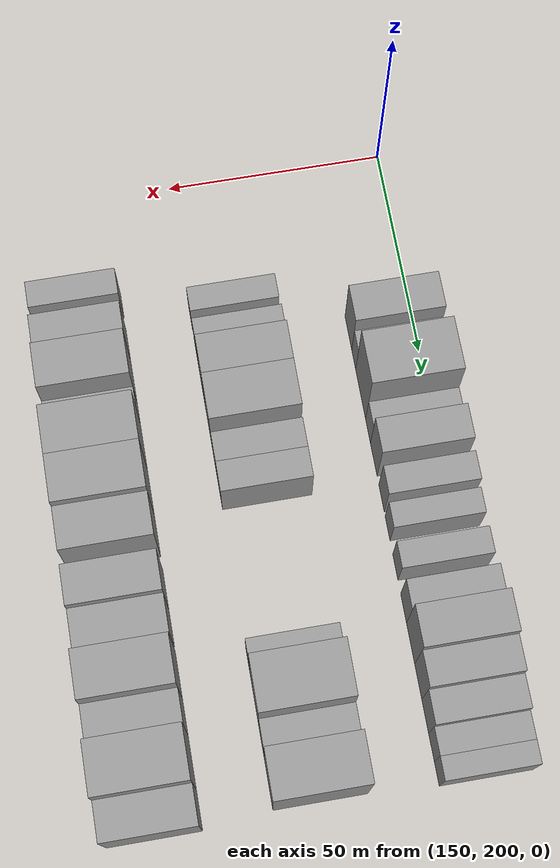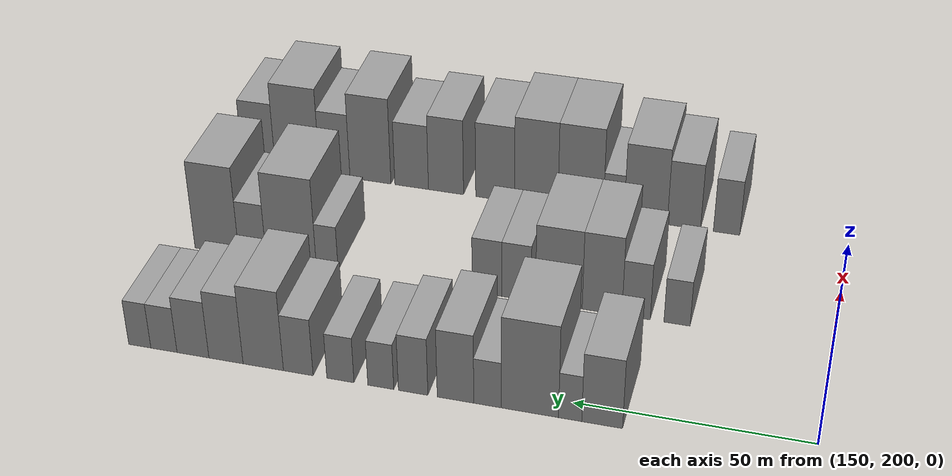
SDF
<sdf version="1.6">
 <world name="default">
  <model name="building_458">
   <static>1</static>
   <pose>155.0000 242.9606 0 0.000000 0.000000 0.000000</pose>
   <link name="link">
    <pose>0 0 9.00 0 0 0</pose>
    <collision name="collision"><geometry><box><size>20.0000 8.3943 18.0000</size></box></geometry></collision>
    <visual name="visual">
     <cast_shadows>0</cast_shadows>
     <geometry><box><size>20.0000 8.3943 18.0000</size></box></geometry>
     <material>
      <script>
       <uri>model://grey_wall/materials/scripts</uri>
       <uri>model://grey_wall/materials/textures</uri>
       <name>vrc/grey_wall</name>
      </script>
     </material>
    </visual>
   </link>
  </model>
  <model name="building_459">
   <static>1</static>
   <pose>155.0000 249.5626 0 0.000000 0.000000 0.000000</pose>
   <link name="link">
    <pose>0 0 6.00 0 0 0</pose>
    <collision name="collision"><geometry><box><size>20.0000 4.8097 12.0000</size></box></geometry></collision>
    <visual name="visual">
     <cast_shadows>0</cast_shadows>
     <geometry><box><size>20.0000 4.8097 12.0000</size></box></geometry>
     <material>
      <script>
       <uri>model://grey_wall/materials/scripts</uri>
       <uri>model://grey_wall/materials/textures</uri>
       <name>vrc/grey_wall</name>
      </script>
     </material>
    </visual>
   </link>
  </model>
  <model name="building_460">
   <static>1</static>
   <pose>155.0000 257.9498 0 0.000000 0.000000 0.000000</pose>
   <link name="link">
    <pose>0 0 12.00 0 0 0</pose>
    <collision name="collision"><geometry><box><size>20.0000 11.9647 24.0000</size></box></geometry></collision>
    <visual name="visual">
     <cast_shadows>0</cast_shadows>
     <geometry><box><size>20.0000 11.9647 24.0000</size></box></geometry>
     <material>
      <script>
       <uri>model://grey_wall/materials/scripts</uri>
       <uri>model://grey_wall/materials/textures</uri>
       <name>vrc/grey_wall</name>
      </script>
     </material>
    </visual>
   </link>
  </model>
  <model name="building_461">
   <static>1</static>
   <pose>155.0000 266.8245 0 0.000000 0.000000 0.000000</pose>
   <link name="link">
    <pose>0 0 6.00 0 0 0</pose>
    <collision name="collision"><geometry><box><size>20.0000 5.7848 12.0000</size></box></geometry></collision>
    <visual name="visual">
     <cast_shadows>0</cast_shadows>
     <geometry><box><size>20.0000 5.7848 12.0000</size></box></geometry>
     <material>
      <script>
       <uri>model://grey_wall/materials/scripts</uri>
       <uri>model://grey_wall/materials/textures</uri>
       <name>vrc/grey_wall</name>
      </script>
     </material>
    </visual>
   </link>
  </model>
  <model name="building_462">
   <static>1</static>
   <pose>155.0000 273.6049 0 0.000000 0.000000 0.000000</pose>
   <link name="link">
    <pose>0 0 9.00 0 0 0</pose>
    <collision name="collision"><geometry><box><size>20.0000 7.7759 18.0000</size></box></geometry></collision>
    <visual name="visual">
     <cast_shadows>0</cast_shadows>
     <geometry><box><size>20.0000 7.7759 18.0000</size></box></geometry>
     <material>
      <script>
       <uri>model://grey_wall/materials/scripts</uri>
       <uri>model://grey_wall/materials/textures</uri>
       <name>vrc/grey_wall</name>
      </script>
     </material>
    </visual>
   </link>
  </model>
  <model name="building_463">
   <static>1</static>
   <pose>155.0000 282.6535 0 0.000000 0.000000 0.000000</pose>
   <link name="link">
    <pose>0 0 7.50 0 0 0</pose>
    <collision name="collision"><geometry><box><size>20.0000 6.3214 15.0000</size></box></geometry></collision>
    <visual name="visual">
     <cast_shadows>0</cast_shadows>
     <geometry><box><size>20.0000 6.3214 15.0000</size></box></geometry>
     <material>
      <script>
       <uri>model://grey_wall/materials/scripts</uri>
       <uri>model://grey_wall/materials/textures</uri>
       <name>vrc/grey_wall</name>
      </script>
     </material>
    </visual>
   </link>
  </model>
  <model name="building_464">
   <static>1</static>
   <pose>155.0000 289.6211 0 0.000000 0.000000 0.000000</pose>
   <link name="link">
    <pose>0 0 6.00 0 0 0</pose>
    <collision name="collision"><geometry><box><size>20.0000 5.6137 12.0000</size></box></geometry></collision>
    <visual name="visual">
     <cast_shadows>0</cast_shadows>
     <geometry><box><size>20.0000 5.6137 12.0000</size></box></geometry>
     <material>
      <script>
       <uri>model://grey_wall/materials/scripts</uri>
       <uri>model://grey_wall/materials/textures</uri>
       <name>vrc/grey_wall</name>
      </script>
     </material>
    </visual>
   </link>
  </model>
  <model name="building_465">
   <static>1</static>
   <pose>155.0000 298.3934 0 0.000000 0.000000 0.000000</pose>
   <link name="link">
    <pose>0 0 6.00 0 0 0</pose>
    <collision name="collision"><geometry><box><size>20.0000 5.9309 12.0000</size></box></geometry></collision>
    <visual name="visual">
     <cast_shadows>0</cast_shadows>
     <geometry><box><size>20.0000 5.9309 12.0000</size></box></geometry>
     <material>
      <script>
       <uri>model://grey_wall/materials/scripts</uri>
       <uri>model://grey_wall/materials/textures</uri>
       <name>vrc/grey_wall</name>
      </script>
     </material>
    </visual>
   </link>
  </model>
  <model name="building_466">
   <static>1</static>
   <pose>155.0000 307.6278 0 0.000000 0.000000 0.000000</pose>
   <link name="link">
    <pose>0 0 7.50 0 0 0</pose>
    <collision name="collision"><geometry><box><size>20.0000 6.5379 15.0000</size></box></geometry></collision>
    <visual name="visual">
     <cast_shadows>0</cast_shadows>
     <geometry><box><size>20.0000 6.5379 15.0000</size></box></geometry>
     <material>
      <script>
       <uri>model://grey_wall/materials/scripts</uri>
       <uri>model://grey_wall/materials/textures</uri>
       <name>vrc/grey_wall</name>
      </script>
     </material>
    </visual>
   </link>
  </model>
  <model name="building_467">
   <static>1</static>
   <pose>155.0000 315.3817 0 0.000000 0.000000 0.000000</pose>
   <link name="link">
    <pose>0 0 10.50 0 0 0</pose>
    <collision name="collision"><geometry><box><size>20.0000 8.9701 21.0000</size></box></geometry></collision>
    <visual name="visual">
     <cast_shadows>0</cast_shadows>
     <geometry><box><size>20.0000 8.9701 21.0000</size></box></geometry>
     <material>
      <script>
       <uri>model://grey_wall/materials/scripts</uri>
       <uri>model://grey_wall/materials/textures</uri>
       <name>vrc/grey_wall</name>
      </script>
     </material>
    </visual>
   </link>
  </model>
  <model name="building_468">
   <static>1</static>
   <pose>155.0000 323.6958 0 0.000000 0.000000 0.000000</pose>
   <link name="link">
    <pose>0 0 9.00 0 0 0</pose>
    <collision name="collision"><geometry><box><size>20.0000 7.6580 18.0000</size></box></geometry></collision>
    <visual name="visual">
     <cast_shadows>0</cast_shadows>
     <geometry><box><size>20.0000 7.6580 18.0000</size></box></geometry>
     <material>
      <script>
       <uri>model://grey_wall/materials/scripts</uri>
       <uri>model://grey_wall/materials/textures</uri>
       <name>vrc/grey_wall</name>
      </script>
     </material>
    </visual>
   </link>
  </model>
  <model name="building_469">
   <static>1</static>
   <pose>155.0000 331.1213 0 0.000000 0.000000 0.000000</pose>
   <link name="link">
    <pose>0 0 7.50 0 0 0</pose>
    <collision name="collision"><geometry><box><size>20.0000 7.1929 15.0000</size></box></geometry></collision>
    <visual name="visual">
     <cast_shadows>0</cast_shadows>
     <geometry><box><size>20.0000 7.1929 15.0000</size></box></geometry>
     <material>
      <script>
       <uri>model://grey_wall/materials/scripts</uri>
       <uri>model://grey_wall/materials/textures</uri>
       <name>vrc/grey_wall</name>
      </script>
     </material>
    </visual>
   </link>
  </model>
  <model name="building_470">
   <static>1</static>
   <pose>155.0000 337.6980 0 0.000000 0.000000 0.000000</pose>
   <link name="link">
    <pose>0 0 6.00 0 0 0</pose>
    <collision name="collision"><geometry><box><size>20.0000 5.9605 12.0000</size></box></geometry></collision>
    <visual name="visual">
     <cast_shadows>0</cast_shadows>
     <geometry><box><size>20.0000 5.9605 12.0000</size></box></geometry>
     <material>
      <script>
       <uri>model://grey_wall/materials/scripts</uri>
       <uri>model://grey_wall/materials/textures</uri>
       <name>vrc/grey_wall</name>
      </script>
     </material>
    </visual>
   </link>
  </model>
  <model name="building_471">
   <static>1</static>
   <pose>155.0000 343.2026 0 0.000000 0.000000 0.000000</pose>
   <link name="link">
    <pose>0 0 6.00 0 0 0</pose>
    <collision name="collision"><geometry><box><size>20.0000 5.0488 12.0000</size></box></geometry></collision>
    <visual name="visual">
     <cast_shadows>0</cast_shadows>
     <geometry><box><size>20.0000 5.0488 12.0000</size></box></geometry>
     <material>
      <script>
       <uri>model://grey_wall/materials/scripts</uri>
       <uri>model://grey_wall/materials/textures</uri>
       <name>vrc/grey_wall</name>
      </script>
     </material>
    </visual>
   </link>
  </model>
  <model name="building_584">
   <static>1</static>
   <pose>190.0000 233.4804 0 0.000000 0.000000 0.000000</pose>
   <link name="link">
    <pose>0 0 6.00 0 0 0</pose>
    <collision name="collision"><geometry><box><size>20.0000 5.7271 12.0000</size></box></geometry></collision>
    <visual name="visual">
     <cast_shadows>0</cast_shadows>
     <geometry><box><size>20.0000 5.7271 12.0000</size></box></geometry>
     <material>
      <script>
       <uri>model://grey_wall/materials/scripts</uri>
       <uri>model://grey_wall/materials/textures</uri>
       <name>vrc/grey_wall</name>
      </script>
     </material>
    </visual>
   </link>
  </model>
  <model name="building_585">
   <static>1</static>
   <pose>190.0000 242.4651 0 0.000000 0.000000 0.000000</pose>
   <link name="link">
    <pose>0 0 7.50 0 0 0</pose>
    <collision name="collision"><geometry><box><size>20.0000 6.2423 15.0000</size></box></geometry></collision>
    <visual name="visual">
     <cast_shadows>0</cast_shadows>
     <geometry><box><size>20.0000 6.2423 15.0000</size></box></geometry>
     <material>
      <script>
       <uri>model://grey_wall/materials/scripts</uri>
       <uri>model://grey_wall/materials/textures</uri>
       <name>vrc/grey_wall</name>
      </script>
     </material>
    </visual>
   </link>
  </model>
  <model name="building_586">
   <static>1</static>
   <pose>190.0000 250.0035 0 0.000000 0.000000 0.000000</pose>
   <link name="link">
    <pose>0 0 10.50 0 0 0</pose>
    <collision name="collision"><geometry><box><size>20.0000 8.8345 21.0000</size></box></geometry></collision>
    <visual name="visual">
     <cast_shadows>0</cast_shadows>
     <geometry><box><size>20.0000 8.8345 21.0000</size></box></geometry>
     <material>
      <script>
       <uri>model://grey_wall/materials/scripts</uri>
       <uri>model://grey_wall/materials/textures</uri>
       <name>vrc/grey_wall</name>
      </script>
     </material>
    </visual>
   </link>
  </model>
  <model name="building_587">
   <static>1</static>
   <pose>190.0000 259.6524 0 0.000000 0.000000 0.000000</pose>
   <link name="link">
    <pose>0 0 10.50 0 0 0</pose>
    <collision name="collision"><geometry><box><size>20.0000 10.4633 21.0000</size></box></geometry></collision>
    <visual name="visual">
     <cast_shadows>0</cast_shadows>
     <geometry><box><size>20.0000 10.4633 21.0000</size></box></geometry>
     <material>
      <script>
       <uri>model://grey_wall/materials/scripts</uri>
       <uri>model://grey_wall/materials/textures</uri>
       <name>vrc/grey_wall</name>
      </script>
     </material>
    </visual>
   </link>
  </model>
  <model name="building_588">
   <static>1</static>
   <pose>190.0000 269.1987 0 0.000000 0.000000 0.000000</pose>
   <link name="link">
    <pose>0 0 7.50 0 0 0</pose>
    <collision name="collision"><geometry><box><size>20.0000 6.6293 15.0000</size></box></geometry></collision>
    <visual name="visual">
     <cast_shadows>0</cast_shadows>
     <geometry><box><size>20.0000 6.6293 15.0000</size></box></geometry>
     <material>
      <script>
       <uri>model://grey_wall/materials/scripts</uri>
       <uri>model://grey_wall/materials/textures</uri>
       <name>vrc/grey_wall</name>
      </script>
     </material>
    </visual>
   </link>
  </model>
  <model name="building_589">
   <static>1</static>
   <pose>190.0000 275.8765 0 0.000000 0.000000 0.000000</pose>
   <link name="link">
    <pose>0 0 7.50 0 0 0</pose>
    <collision name="collision"><geometry><box><size>20.0000 6.7262 15.0000</size></box></geometry></collision>
    <visual name="visual">
     <cast_shadows>0</cast_shadows>
     <geometry><box><size>20.0000 6.7262 15.0000</size></box></geometry>
     <material>
      <script>
       <uri>model://grey_wall/materials/scripts</uri>
       <uri>model://grey_wall/materials/textures</uri>
       <name>vrc/grey_wall</name>
      </script>
     </material>
    </visual>
   </link>
  </model>
  <model name="building_590">
   <static>1</static>
   <pose>190.0000 312.9645 0 0.000000 0.000000 0.000000</pose>
   <link name="link">
    <pose>0 0 6.00 0 0 0</pose>
    <collision name="collision"><geometry><box><size>20.0000 5.1500 12.0000</size></box></geometry></collision>
    <visual name="visual">
     <cast_shadows>0</cast_shadows>
     <geometry><box><size>20.0000 5.1500 12.0000</size></box></geometry>
     <material>
      <script>
       <uri>model://grey_wall/materials/scripts</uri>
       <uri>model://grey_wall/materials/textures</uri>
       <name>vrc/grey_wall</name>
      </script>
     </material>
    </visual>
   </link>
  </model>
  <model name="building_591">
   <static>1</static>
   <pose>190.0000 321.5065 0 0.000000 0.000000 0.000000</pose>
   <link name="link">
    <pose>0 0 12.00 0 0 0</pose>
    <collision name="collision"><geometry><box><size>20.0000 11.9340 24.0000</size></box></geometry></collision>
    <visual name="visual">
     <cast_shadows>0</cast_shadows>
     <geometry><box><size>20.0000 11.9340 24.0000</size></box></geometry>
     <material>
      <script>
       <uri>model://grey_wall/materials/scripts</uri>
       <uri>model://grey_wall/materials/textures</uri>
       <name>vrc/grey_wall</name>
      </script>
     </material>
    </visual>
   </link>
  </model>
  <model name="building_592">
   <static>1</static>
   <pose>190.0000 330.7535 0 0.000000 0.000000 0.000000</pose>
   <link name="link">
    <pose>0 0 7.50 0 0 0</pose>
    <collision name="collision"><geometry><box><size>20.0000 6.5600 15.0000</size></box></geometry></collision>
    <visual name="visual">
     <cast_shadows>0</cast_shadows>
     <geometry><box><size>20.0000 6.5600 15.0000</size></box></geometry>
     <material>
      <script>
       <uri>model://grey_wall/materials/scripts</uri>
       <uri>model://grey_wall/materials/textures</uri>
       <name>vrc/grey_wall</name>
      </script>
     </material>
    </visual>
   </link>
  </model>
  <model name="building_593">
   <static>1</static>
   <pose>190.0000 339.3719 0 0.000000 0.000000 0.000000</pose>
   <link name="link">
    <pose>0 0 12.00 0 0 0</pose>
    <collision name="collision"><geometry><box><size>20.0000 10.6768 24.0000</size></box></geometry></collision>
    <visual name="visual">
     <cast_shadows>0</cast_shadows>
     <geometry><box><size>20.0000 10.6768 24.0000</size></box></geometry>
     <material>
      <script>
       <uri>model://grey_wall/materials/scripts</uri>
       <uri>model://grey_wall/materials/textures</uri>
       <name>vrc/grey_wall</name>
      </script>
     </material>
    </visual>
   </link>
  </model>
  <model name="building_708">
   <static>1</static>
   <pose>225.0000 227.7055 0 0.000000 0.000000 0.000000</pose>
   <link name="link">
    <pose>0 0 7.50 0 0 0</pose>
    <collision name="collision"><geometry><box><size>20.0000 6.1344 15.0000</size></box></geometry></collision>
    <visual name="visual">
     <cast_shadows>0</cast_shadows>
     <geometry><box><size>20.0000 6.1344 15.0000</size></box></geometry>
     <material>
      <script>
       <uri>model://grey_wall/materials/scripts</uri>
       <uri>model://grey_wall/materials/textures</uri>
       <name>vrc/grey_wall</name>
      </script>
     </material>
    </visual>
   </link>
  </model>
  <model name="building_709">
   <static>1</static>
   <pose>225.0000 237.6635 0 0.000000 0.000000 0.000000</pose>
   <link name="link">
    <pose>0 0 9.00 0 0 0</pose>
    <collision name="collision"><geometry><box><size>20.0000 7.7816 18.0000</size></box></geometry></collision>
    <visual name="visual">
     <cast_shadows>0</cast_shadows>
     <geometry><box><size>20.0000 7.7816 18.0000</size></box></geometry>
     <material>
      <script>
       <uri>model://grey_wall/materials/scripts</uri>
       <uri>model://grey_wall/materials/textures</uri>
       <name>vrc/grey_wall</name>
      </script>
     </material>
    </visual>
   </link>
  </model>
  <model name="building_710">
   <static>1</static>
   <pose>225.0000 246.6580 0 0.000000 0.000000 0.000000</pose>
   <link name="link">
    <pose>0 0 10.50 0 0 0</pose>
    <collision name="collision"><geometry><box><size>20.0000 10.2074 21.0000</size></box></geometry></collision>
    <visual name="visual">
     <cast_shadows>0</cast_shadows>
     <geometry><box><size>20.0000 10.2074 21.0000</size></box></geometry>
     <material>
      <script>
       <uri>model://grey_wall/materials/scripts</uri>
       <uri>model://grey_wall/materials/textures</uri>
       <name>vrc/grey_wall</name>
      </script>
     </material>
    </visual>
   </link>
  </model>
  <model name="building_711">
   <static>1</static>
   <pose>225.0000 254.2560 0 0.000000 0.000000 0.000000</pose>
   <link name="link">
    <pose>0 0 6.00 0 0 0</pose>
    <collision name="collision"><geometry><box><size>20.0000 4.9885 12.0000</size></box></geometry></collision>
    <visual name="visual">
     <cast_shadows>0</cast_shadows>
     <geometry><box><size>20.0000 4.9885 12.0000</size></box></geometry>
     <material>
      <script>
       <uri>model://grey_wall/materials/scripts</uri>
       <uri>model://grey_wall/materials/textures</uri>
       <name>vrc/grey_wall</name>
      </script>
     </material>
    </visual>
   </link>
  </model>
  <model name="building_712">
   <static>1</static>
   <pose>225.0000 262.1753 0 0.000000 0.000000 0.000000</pose>
   <link name="link">
    <pose>0 0 12.00 0 0 0</pose>
    <collision name="collision"><geometry><box><size>20.0000 10.8502 24.0000</size></box></geometry></collision>
    <visual name="visual">
     <cast_shadows>0</cast_shadows>
     <geometry><box><size>20.0000 10.8502 24.0000</size></box></geometry>
     <material>
      <script>
       <uri>model://grey_wall/materials/scripts</uri>
       <uri>model://grey_wall/materials/textures</uri>
       <name>vrc/grey_wall</name>
      </script>
     </material>
    </visual>
   </link>
  </model>
  <model name="building_713">
   <static>1</static>
   <pose>225.0000 272.8585 0 0.000000 0.000000 0.000000</pose>
   <link name="link">
    <pose>0 0 12.00 0 0 0</pose>
    <collision name="collision"><geometry><box><size>20.0000 10.5160 24.0000</size></box></geometry></collision>
    <visual name="visual">
     <cast_shadows>0</cast_shadows>
     <geometry><box><size>20.0000 10.5160 24.0000</size></box></geometry>
     <material>
      <script>
       <uri>model://grey_wall/materials/scripts</uri>
       <uri>model://grey_wall/materials/textures</uri>
       <name>vrc/grey_wall</name>
      </script>
     </material>
    </visual>
   </link>
  </model>
  <model name="building_714">
   <static>1</static>
   <pose>225.0000 282.8438 0 0.000000 0.000000 0.000000</pose>
   <link name="link">
    <pose>0 0 10.50 0 0 0</pose>
    <collision name="collision"><geometry><box><size>20.0000 9.4548 21.0000</size></box></geometry></collision>
    <visual name="visual">
     <cast_shadows>0</cast_shadows>
     <geometry><box><size>20.0000 9.4548 21.0000</size></box></geometry>
     <material>
      <script>
       <uri>model://grey_wall/materials/scripts</uri>
       <uri>model://grey_wall/materials/textures</uri>
       <name>vrc/grey_wall</name>
      </script>
     </material>
    </visual>
   </link>
  </model>
  <model name="building_715">
   <static>1</static>
   <pose>225.0000 294.9056 0 0.000000 0.000000 0.000000</pose>
   <link name="link">
    <pose>0 0 10.50 0 0 0</pose>
    <collision name="collision"><geometry><box><size>20.0000 8.6687 21.0000</size></box></geometry></collision>
    <visual name="visual">
     <cast_shadows>0</cast_shadows>
     <geometry><box><size>20.0000 8.6687 21.0000</size></box></geometry>
     <material>
      <script>
       <uri>model://grey_wall/materials/scripts</uri>
       <uri>model://grey_wall/materials/textures</uri>
       <name>vrc/grey_wall</name>
      </script>
     </material>
    </visual>
   </link>
  </model>
  <model name="building_716">
   <static>1</static>
   <pose>225.0000 303.4182 0 0.000000 0.000000 0.000000</pose>
   <link name="link">
    <pose>0 0 9.00 0 0 0</pose>
    <collision name="collision"><geometry><box><size>20.0000 8.3566 18.0000</size></box></geometry></collision>
    <visual name="visual">
     <cast_shadows>0</cast_shadows>
     <geometry><box><size>20.0000 8.3566 18.0000</size></box></geometry>
     <material>
      <script>
       <uri>model://grey_wall/materials/scripts</uri>
       <uri>model://grey_wall/materials/textures</uri>
       <name>vrc/grey_wall</name>
      </script>
     </material>
    </visual>
   </link>
  </model>
  <model name="building_717">
   <static>1</static>
   <pose>225.0000 313.7451 0 0.000000 0.000000 0.000000</pose>
   <link name="link">
    <pose>0 0 12.00 0 0 0</pose>
    <collision name="collision"><geometry><box><size>20.0000 10.2973 24.0000</size></box></geometry></collision>
    <visual name="visual">
     <cast_shadows>0</cast_shadows>
     <geometry><box><size>20.0000 10.2973 24.0000</size></box></geometry>
     <material>
      <script>
       <uri>model://grey_wall/materials/scripts</uri>
       <uri>model://grey_wall/materials/textures</uri>
       <name>vrc/grey_wall</name>
      </script>
     </material>
    </visual>
   </link>
  </model>
  <model name="building_718">
   <static>1</static>
   <pose>225.0000 322.7311 0 0.000000 0.000000 0.000000</pose>
   <link name="link">
    <pose>0 0 9.00 0 0 0</pose>
    <collision name="collision"><geometry><box><size>20.0000 7.6746 18.0000</size></box></geometry></collision>
    <visual name="visual">
     <cast_shadows>0</cast_shadows>
     <geometry><box><size>20.0000 7.6746 18.0000</size></box></geometry>
     <material>
      <script>
       <uri>model://grey_wall/materials/scripts</uri>
       <uri>model://grey_wall/materials/textures</uri>
       <name>vrc/grey_wall</name>
      </script>
     </material>
    </visual>
   </link>
  </model>
  <model name="building_719">
   <static>1</static>
   <pose>225.0000 332.2553 0 0.000000 0.000000 0.000000</pose>
   <link name="link">
    <pose>0 0 12.00 0 0 0</pose>
    <collision name="collision"><geometry><box><size>20.0000 11.3738 24.0000</size></box></geometry></collision>
    <visual name="visual">
     <cast_shadows>0</cast_shadows>
     <geometry><box><size>20.0000 11.3738 24.0000</size></box></geometry>
     <material>
      <script>
       <uri>model://grey_wall/materials/scripts</uri>
       <uri>model://grey_wall/materials/textures</uri>
       <name>vrc/grey_wall</name>
      </script>
     </material>
    </visual>
   </link>
  </model>
  <model name="building_720">
   <static>1</static>
   <pose>225.0000 342.1510 0 0.000000 0.000000 0.000000</pose>
   <link name="link">
    <pose>0 0 9.00 0 0 0</pose>
    <collision name="collision"><geometry><box><size>20.0000 8.4176 18.0000</size></box></geometry></collision>
    <visual name="visual">
     <cast_shadows>0</cast_shadows>
     <geometry><box><size>20.0000 8.4176 18.0000</size></box></geometry>
     <material>
      <script>
       <uri>model://grey_wall/materials/scripts</uri>
       <uri>model://grey_wall/materials/textures</uri>
       <name>vrc/grey_wall</name>
      </script>
     </material>
    </visual>
   </link>
  </model>
 </world>
</sdf>
